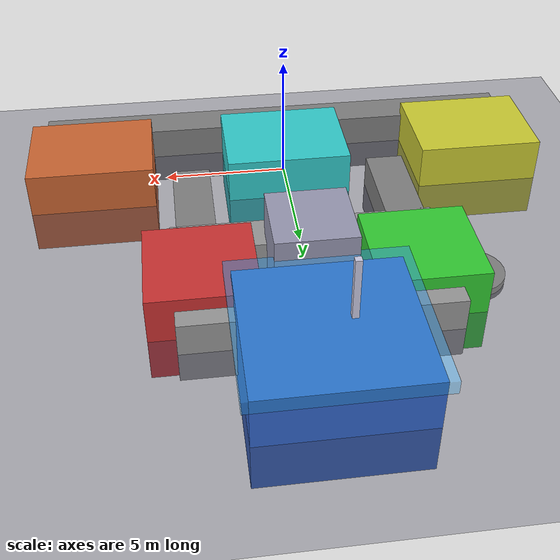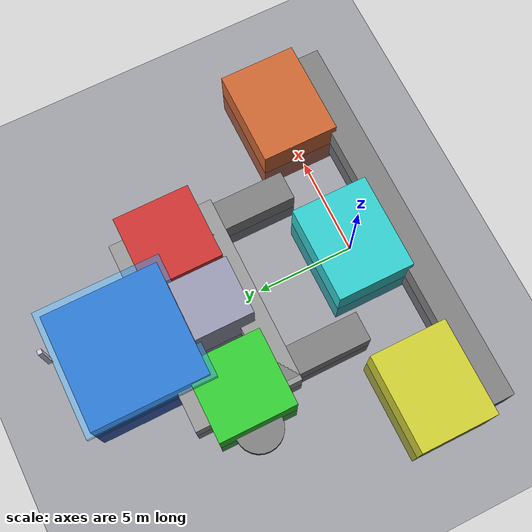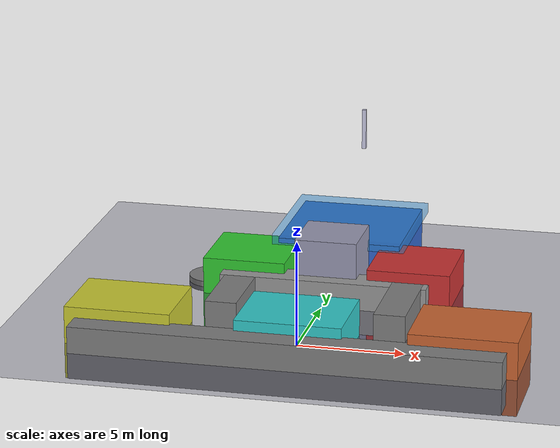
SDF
<?xml version="1.0" ?>
<sdf version="1.7">
  <world name="eiffel_spacecraft">

    <!-- Ground -->
    <model name="ground_plane">
      <static>true</static>
      <link name="link">
        <visual name="visual">
          <geometry>
            <plane><normal>0 0 1</normal><size>40 40</size></plane>
          </geometry>
          <material><ambient>0.2 0.2 0.3 1</ambient></material>
        </visual>
        <collision name="collision">
          <geometry>
            <plane><normal>0 0 1</normal><size>40 40</size></plane>
          </geometry>
        </collision>
      </link>
    </model>

    <!--            TOP FLOOR - COMMAND MODULE        -->

    <!-- Spire (top antenna) -->
    <model name="spire">
      <static>true</static>
      <pose>0 15 6 0 0 0</pose>
      <link name="spire">
        <visual name="visual">
          <geometry><box><size>0.2 0.2 2</size></box></geometry>
          <material><ambient>0.8 0.8 0.9 1</ambient></material>
        </visual>
        <collision name="collision">
          <geometry><box><size>0.2 0.2 2</size></box></geometry>
        </collision>
      </link>
    </model>

    <!-- Command Module (Top - Blue) -->
    <model name="command_module">
      <static>true</static>
      <pose>0 12 0 0 0 0</pose>
      <link name="wall">
        <visual name="visual">
          <geometry><box><size>6 6 4</size></box></geometry>
          <material><ambient>0.2 0.4 0.8 1</ambient></material>
        </visual>
        <collision name="collision">
          <geometry><box><size>6 6 4</size></box></geometry>
        </collision>
      </link>
    </model>

    <!-- Command Module Windows -->
    <model name="command_windows">
      <static>true</static>
      <pose>0 12 2 0 0 0</pose>
      <link name="glass">
        <visual name="visual">
          <geometry><box><size>6.5 6.5 0.5</size></box></geometry>
          <material><ambient>0.2 0.6 0.9 0.5</ambient></material>
        </visual>
      </link>
    </model>

    <!--            MIDDLE FLOOR - AIRLOCK            -->

    <!-- Airlock (Middle Left - Green) -->
    <model name="airlock">
      <static>true</static>
      <pose>-4 8 0 0 0 0</pose>
      <link name="wall">
        <visual name="visual">
          <geometry><box><size>4 4 3.5</size></box></geometry>
          <material><ambient>0.2 0.8 0.2 1</ambient></material>
        </visual>
        <collision name="collision">
          <geometry><box><size>4 4 3.5</size></box></geometry>
        </collision>
      </link>
    </model>

    <!-- Docking Port -->
    <model name="docking_port">
      <static>true</static>
      <pose>-6 8 0 0 0 0</pose>
      <link name="port">
        <visual name="visual">
          <geometry><cylinder><radius>1.2</radius><length>0.5</length></cylinder></geometry>
          <material><ambient>0.5 0.5 0.5 1</ambient></material>
        </visual>
        <collision name="collision">
          <geometry><cylinder><radius>1.2</radius><length>0.5</length></cylinder></geometry>
        </collision>
      </link>
    </model>

    <!-- Sleeping Quarters (Middle Right - Red) -->
    <model name="sleeping_quarters">
      <static>true</static>
      <pose>4 8 0 0 0 0</pose>
      <link name="wall">
        <visual name="visual">
          <geometry><box><size>4 4 3.5</size></box></geometry>
          <material><ambient>0.8 0.2 0.2 1</ambient></material>
        </visual>
        <collision name="collision">
          <geometry><box><size>4 4 3.5</size></box></geometry>
        </collision>
      </link>
    </model>

    <!--           ELEVATOR / CENTRAL CORE           -->

    <!-- Main Elevator Shaft -->
    <model name="elevator_shaft">
      <static>true</static>
      <pose>0 7.5 0 0 0 0</pose>
      <link name="shaft">
        <visual name="visual">
          <geometry><box><size>3 3 6</size></box></geometry>
          <material><ambient>0.6 0.6 0.7 1</ambient></material>
        </visual>
        <collision name="collision">
          <geometry><box><size>3 3 6</size></box></geometry>
        </collision>
      </link>
    </model>

    <!-- Elevator Cab -->
    <model name="elevator_cab">
      <static>true</static>
      <pose>0 7.5 2.5 0 0 0</pose>
      <link name="cab">
        <visual name="visual">
          <geometry><box><size>2.5 2.5 0.8</size></box></geometry>
          <material><ambient>0.9 0.9 0.9 1</ambient></material>
        </visual>
        <collision name="collision">
          <geometry><box><size>2.5 2.5 0.8</size></box></geometry>
        </collision>
      </link>
    </model>

    <!--          SPIRAL CORRIDORS                    -->

    <model name="spiral_corridor_top">
      <static>true</static>
      <pose>0 10 0 0 0 0</pose>
      <link name="wall">
        <visual name="visual">
          <geometry><box><size>10 1.5 2.5</size></box></geometry>
          <material><ambient>0.6 0.6 0.6 1</ambient></material>
        </visual>
        <collision name="collision">
          <geometry><box><size>10 1.5 2.5</size></box></geometry>
        </collision>
      </link>
    </model>

    <model name="spiral_corridor_bottom">
      <static>true</static>
      <pose>0 6 0 0 0 0</pose>
      <link name="wall">
        <visual name="visual">
          <geometry><box><size>10 1.5 2.5</size></box></geometry>
          <material><ambient>0.6 0.6 0.6 1</ambient></material>
        </visual>
        <collision name="collision">
          <geometry><box><size>10 1.5 2.5</size></box></geometry>
        </collision>
      </link>
    </model>

    <!--          GROUND FLOOR (3 rooms)             -->

    <!-- Cargo Bay (Bottom Left - Yellow) -->
    <model name="cargo_bay">
      <static>true</static>
      <pose>-8 0 0 0 0 0</pose>
      <link name="wall">
        <visual name="visual">
          <geometry><box><size>5 4 3.5</size></box></geometry>
          <material><ambient>0.8 0.8 0.2 1</ambient></material>
        </visual>
        <collision name="collision">
          <geometry><box><size>5 4 3.5</size></box></geometry>
        </collision>
      </link>
    </model>

    <!-- Cargo Obstacles -->
    <model name="crate1">
      <static>true</static>
      <pose>-9 -1 0.3 0 0 0</pose>
      <link name="crate">
        <visual name="visual">
          <geometry><box><size>0.8 0.8 0.6</size></box></geometry>
          <material><ambient>0.4 0.2 0.1 1</ambient></material>
        </visual>
        <collision name="collision">
          <geometry><box><size>0.8 0.8 0.6</size></box></geometry>
        </collision>
      </link>
    </model>

    <model name="crate2">
      <static>true</static>
      <pose>-7 -1 0.3 0 0 0</pose>
      <link name="crate">
        <visual name="visual">
          <geometry><box><size>0.8 0.8 0.6</size></box></geometry>
          <material><ambient>0.4 0.2 0.1 1</ambient></material>
        </visual>
        <collision name="collision">
          <geometry><box><size>0.8 0.8 0.6</size></box></geometry>
        </collision>
      </link>
    </model>

    <model name="crate3">
      <static>true</static>
      <pose>-8 1 0.3 0 0 0</pose>
      <link name="crate">
        <visual name="visual">
          <geometry><box><size>0.8 0.8 0.6</size></box></geometry>
          <material><ambient>0.4 0.2 0.1 1</ambient></material>
        </visual>
        <collision name="collision">
          <geometry><box><size>0.8 0.8 0.6</size></box></geometry>
        </collision>
      </link>
    </model>

    <!-- Medical Bay (Bottom Center - Cyan) -->
    <model name="medical_bay">
      <static>true</static>
      <pose>0 0 0 0 0 0</pose>
      <link name="wall">
        <visual name="visual">
          <geometry><box><size>5 4 3.5</size></box></geometry>
          <material><ambient>0.2 0.8 0.8 1</ambient></material>
        </visual>
        <collision name="collision">
          <geometry><box><size>5 4 3.5</size></box></geometry>
        </collision>
      </link>
    </model>

    <!-- Medical Equipment -->
    <model name="hospital_bed1">
      <static>true</static>
      <pose>-0.5 0.5 0.2 0 0 0</pose>
      <link name="bed">
        <visual name="visual">
          <geometry><box><size>1.2 0.6 0.3</size></box></geometry>
          <material><ambient>0.9 0.9 0.9 1</ambient></material>
        </visual>
        <collision name="collision">
          <geometry><box><size>1.2 0.6 0.3</size></box></geometry>
        </collision>
      </link>
    </model>

    <model name="hospital_bed2">
      <static>true</static>
      <pose>0.5 -0.5 0.2 0 0 0</pose>
      <link name="bed">
        <visual name="visual">
          <geometry><box><size>1.2 0.6 0.3</size></box></geometry>
          <material><ambient>0.9 0.9 0.9 1</ambient></material>
        </visual>
        <collision name="collision">
          <geometry><box><size>1.2 0.6 0.3</size></box></geometry>
        </collision>
      </link>
    </model>

    <model name="medical_cart">
      <static>true</static>
      <pose>0 0 0.15 0 0 0</pose>
      <link name="cart">
        <visual name="visual">
          <geometry><box><size>0.5 0.3 0.3</size></box></geometry>
          <material><ambient>0.8 0.8 0.8 1</ambient></material>
        </visual>
        <collision name="collision">
          <geometry><box><size>0.5 0.3 0.3</size></box></geometry>
        </collision>
      </link>
    </model>

    <!-- Engine Room (Bottom Right - Orange) -->
    <model name="engine_room">
      <static>true</static>
      <pose>8 0 0 0 0 0</pose>
      <link name="wall">
        <visual name="visual">
          <geometry><box><size>5 4 3.5</size></box></geometry>
          <material><ambient>0.8 0.4 0.2 1</ambient></material>
        </visual>
        <collision name="collision">
          <geometry><box><size>5 4 3.5</size></box></geometry>
        </collision>
      </link>
    </model>

    <!-- Engine Machinery -->
    <model name="reactor_core">
      <static>true</static>
      <pose>8 0 0.5 0 0 0</pose>
      <link name="reactor">
        <visual name="visual">
          <geometry><cylinder><radius>0.8</radius><length>1</length></cylinder></geometry>
          <material><ambient>0.2 0.2 0.3 1</ambient></material>
        </visual>
        <collision name="collision">
          <geometry><cylinder><radius>0.8</radius><length>1</length></cylinder></geometry>
        </collision>
      </link>
    </model>

    <model name="engine_console1">
      <static>true</static>
      <pose>9.5 0.8 0.3 0 0 0</pose>
      <link name="console">
        <visual name="visual">
          <geometry><box><size>0.4 0.4 0.6</size></box></geometry>
          <material><ambient>0.1 0.1 0.1 1</ambient></material>
        </visual>
        <collision name="collision">
          <geometry><box><size>0.4 0.4 0.6</size></box></geometry>
        </collision>
      </link>
    </model>

    <model name="engine_console2">
      <static>true</static>
      <pose>6.5 -0.8 0.3 0 0 0</pose>
      <link name="console">
        <visual name="visual">
          <geometry><box><size>0.4 0.4 0.6</size></box></geometry>
          <material><ambient>0.1 0.1 0.1 1</ambient></material>
        </visual>
        <collision name="collision">
          <geometry><box><size>0.4 0.4 0.6</size></box></geometry>
        </collision>
      </link>
    </model>

    <!--          GROUND FLOOR CORRIDORS             -->

    <model name="ground_corridor">
      <static>true</static>
      <pose>0 -2.5 0 0 0 0</pose>
      <link name="wall">
        <visual name="visual">
          <geometry><box><size>20 1.5 2.5</size></box></geometry>
          <material><ambient>0.5 0.5 0.5 1</ambient></material>
        </visual>
        <collision name="collision">
          <geometry><box><size>20 1.5 2.5</size></box></geometry>
        </collision>
      </link>
    </model>

    <!-- Vertical Corridors -->
    <model name="vertical_corridor_left">
      <static>true</static>
      <pose>-4 4 0 0 0 0</pose>
      <link name="wall">
        <visual name="visual">
          <geometry><box><size>1.5 5 2.5</size></box></geometry>
          <material><ambient>0.5 0.5 0.5 1</ambient></material>
        </visual>
        <collision name="collision">
          <geometry><box><size>1.5 5 2.5</size></box></geometry>
        </collision>
      </link>
    </model>

    <model name="vertical_corridor_right">
      <static>true</static>
      <pose>4 4 0 0 0 0</pose>
      <link name="wall">
        <visual name="visual">
          <geometry><box><size>1.5 5 2.5</size></box></geometry>
          <material><ambient>0.5 0.5 0.5 1</ambient></material>
        </visual>
        <collision name="collision">
          <geometry><box><size>1.5 5 2.5</size></box></geometry>
        </collision>
      </link>
    </model>

  </world>
</sdf>
